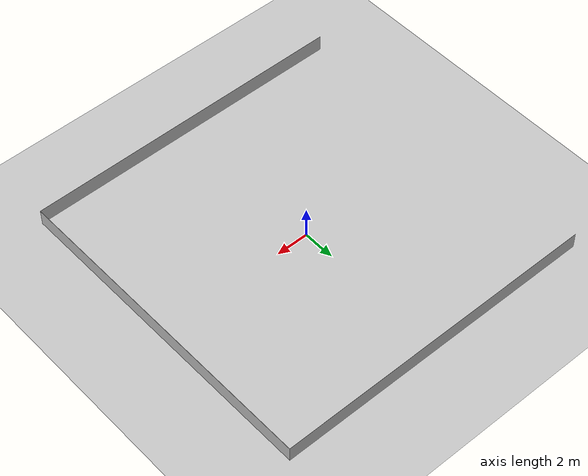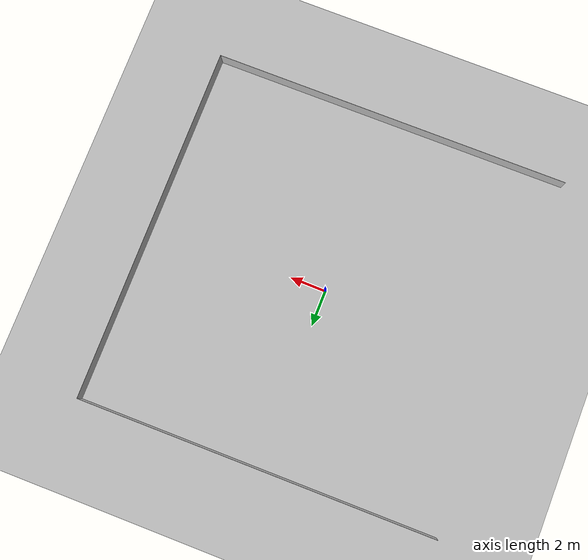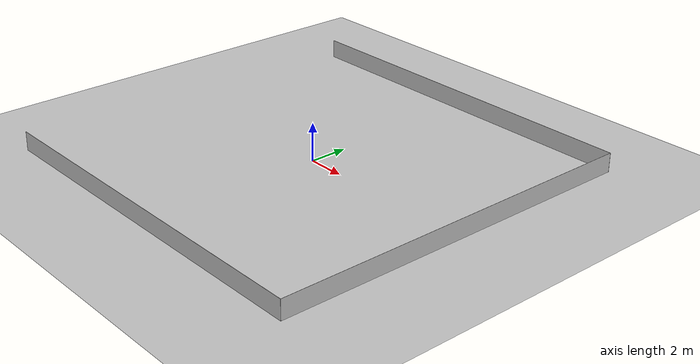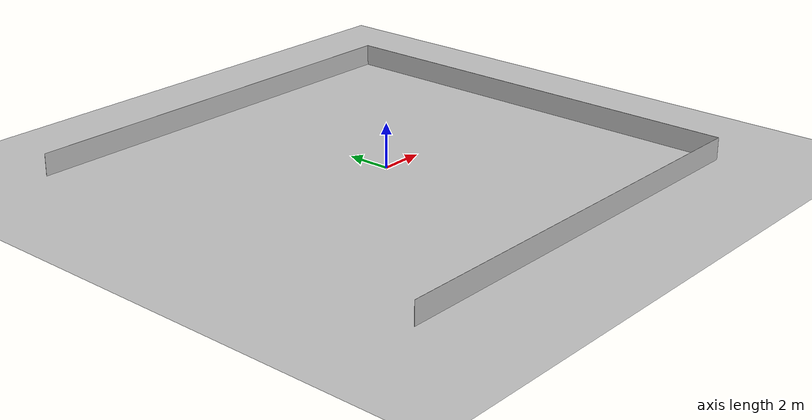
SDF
<sdf version="1.7">
 <world name="default">
  <model name="ground_plane">
   <static>1</static>
   <link name="link">
    <collision name="collision">
     <geometry><plane><normal>0 0 1</normal><size>1 1</size></plane></geometry>
    </collision>
    <visual name="visual">
     <geometry><plane><normal>0 0 1</normal><size>100 100</size></plane></geometry>
     <material>
      <ambient>0.8 0.8 0.8 1</ambient>
      <diffuse>0.8 0.8 0.8 1</diffuse>
      <specular>0.8 0.8 0.8 1</specular>
     </material>
    </visual>
    <inertial>
     <mass>1</mass>
     <inertia><ixx>1</ixx><ixy>0</ixy><ixz>0</ixz><iyy>1</iyy><iyz>0</iyz><izz>1</izz></inertia>
    </inertial>
   </link>
  </model>
  <model name="wall_2">
   <pose>10 0 0.5 0 0 -1.57</pose>
   <static>1</static>
   <link name="link">
    <collision name="collision"><geometry><box><size>20 0.01 1</size></box></geometry></collision>
    <visual name="visual">
     <geometry><box><size>20 0.01 1</size></box></geometry>
     <material>
      <ambient>0.7 0.7 0.7 1</ambient>
      <diffuse>0.7 0.7 0.7 1</diffuse>
      <specular>0.7 0.7 0.7 1</specular>
     </material>
    </visual>
    <inertial>
     <mass>1</mass>
     <inertia><ixx>1</ixx><ixy>0</ixy><ixz>0</ixz><iyy>1</iyy><iyz>0</iyz><izz>1</izz></inertia>
    </inertial>
   </link>
  </model>
  <model name="wall_3">
   <pose>0 10 0.5 0 -0 0</pose>
   <static>1</static>
   <link name="link">
    <collision name="collision"><geometry><box><size>20 0.01 1</size></box></geometry></collision>
    <visual name="visual">
     <geometry><box><size>20 0.01 1</size></box></geometry>
     <material>
      <ambient>0.7 0.7 0.7 1</ambient>
      <diffuse>0.7 0.7 0.7 1</diffuse>
      <specular>0.7 0.7 0.7 1</specular>
     </material>
    </visual>
    <inertial>
     <mass>1</mass>
     <inertia><ixx>1</ixx><ixy>0</ixy><ixz>0</ixz><iyy>1</iyy><iyz>0</iyz><izz>1</izz></inertia>
    </inertial>
   </link>
  </model>
  <model name="wall_4">
   <pose>0 -10 0.5 0 -0 0</pose>
   <static>1</static>
   <link name="link">
    <collision name="collision"><geometry><box><size>20 0.01 1</size></box></geometry></collision>
    <visual name="visual">
     <geometry><box><size>20 0.01 1</size></box></geometry>
     <material>
      <ambient>0.7 0.7 0.7 1</ambient>
      <diffuse>0.7 0.7 0.7 1</diffuse>
      <specular>0.7 0.7 0.7 1</specular>
     </material>
    </visual>
    <inertial>
     <mass>1</mass>
     <inertia><ixx>1</ixx><ixy>0</ixy><ixz>0</ixz><iyy>1</iyy><iyz>0</iyz><izz>1</izz></inertia>
    </inertial>
   </link>
  </model>
 </world>
</sdf>
